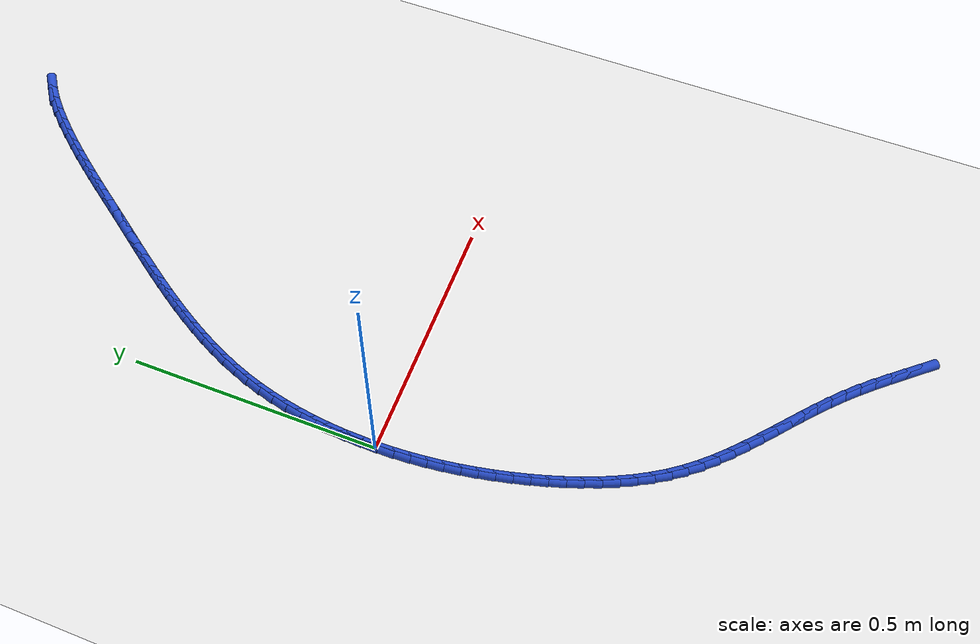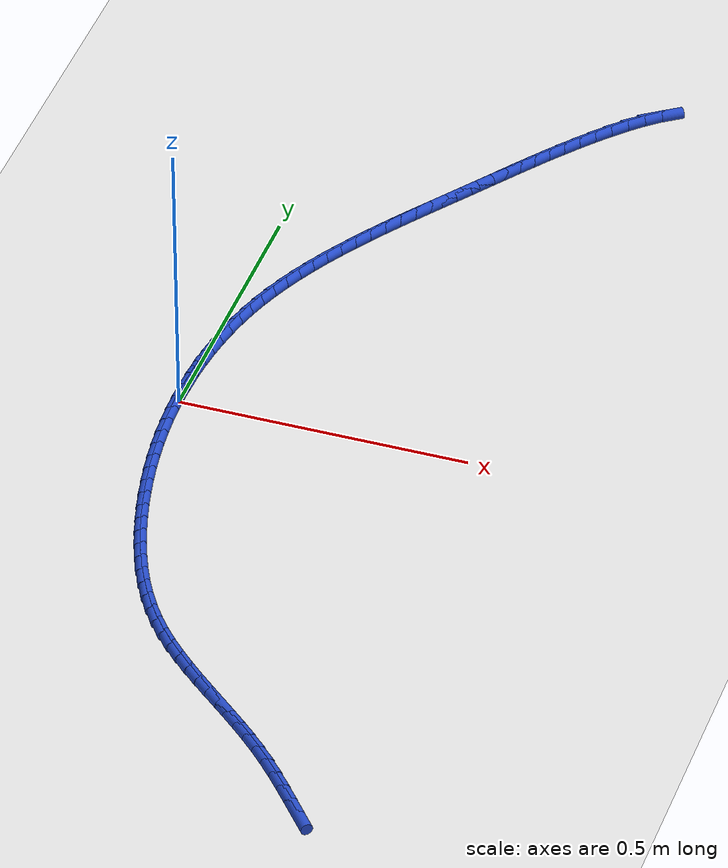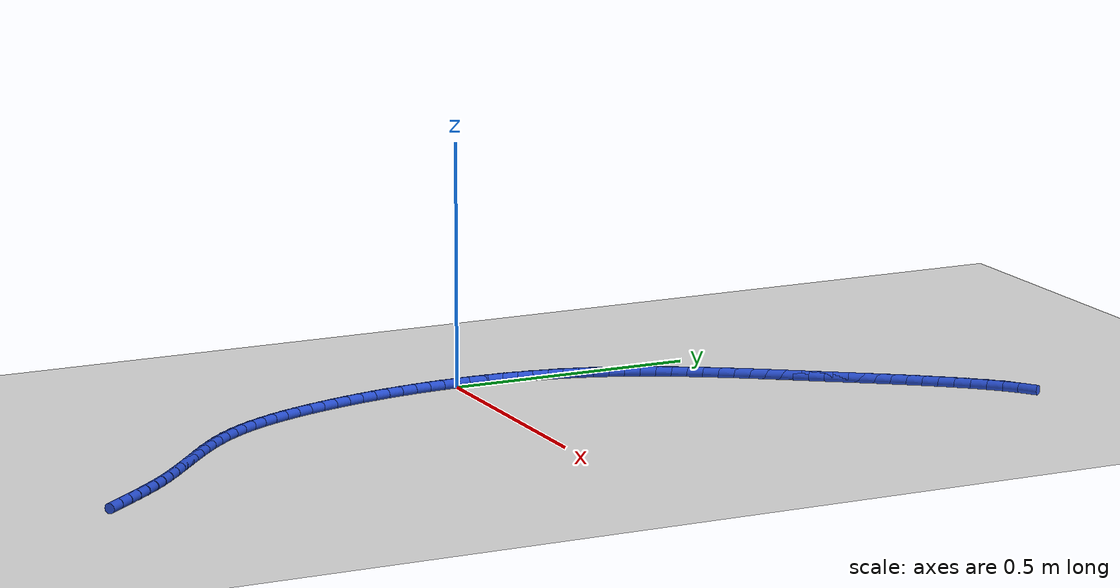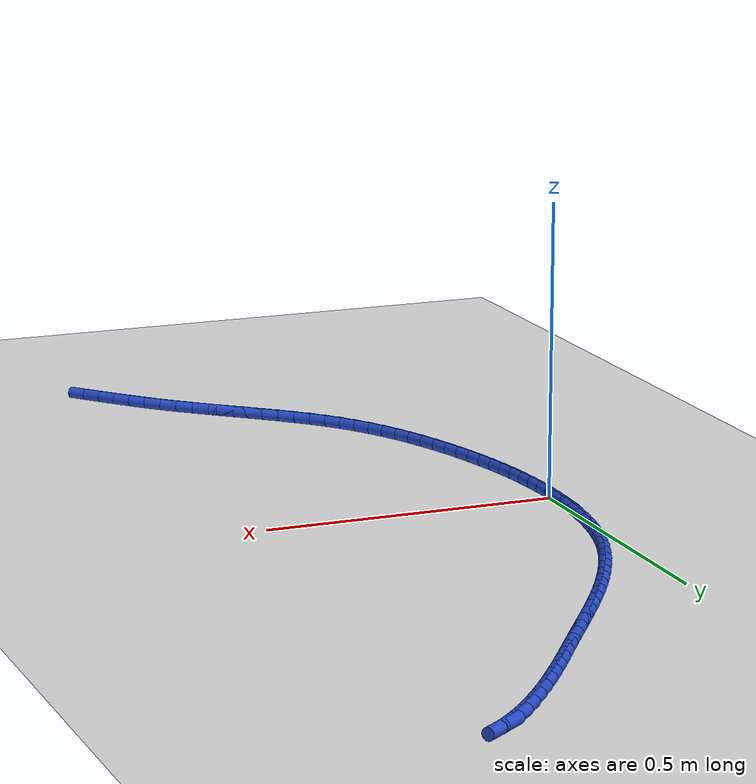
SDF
<sdf version="1.6">
 <world name="default">
  <model name="ground_plane">
   <static>1</static>
   <link name="link">
    <collision name="collision">
     <geometry><plane><normal>0 0 1</normal><size>100 100</size></plane></geometry>
     <surface><friction><ode><mu>100</mu><mu2>50</mu2></ode></friction></surface>
    </collision>
    <visual name="visual">
     <cast_shadows>0</cast_shadows>
     <geometry><plane><normal>0 0 1</normal><size>100 100</size></plane></geometry>
     <material>
      <script><uri>file://media/materials/scripts/gazebo.material</uri><name>Gazebo/WhiteGlow</name></script>
     </material>
    </visual>
   </link>
  </model>
  <model name="line">
   <link name="link_0">
    <pose>6.938893903907228e-18 -5.551115123125783e-17 0.01 0 1.57 1.5669654835388633</pose>
    <collision name="collision">
     <geometry><cylinder><radius>0.01</radius><length>0.08</length></cylinder></geometry>
    </collision>
    <visual name="visual">
     <material>
      <script><name>Gazebo/Blue</name><uri>file://media/materials/scripts/gazebo.material</uri></script>
     </material>
     <geometry><cylinder><radius>0.01</radius><length>0.08</length></cylinder></geometry>
    </visual>
   </link>
   <link name="link_1">
    <pose>0.00012194123054519223 0.031831277315265846 0.01 0 1.57 1.535377310988925</pose>
    <collision name="collision">
     <geometry><cylinder><radius>0.01</radius><length>0.08</length></cylinder></geometry>
    </collision>
    <visual name="visual">
     <material>
      <script><name>Gazebo/Blue</name><uri>file://media/materials/scripts/gazebo.material</uri></script>
     </material>
     <geometry><cylinder><radius>0.01</radius><length>0.08</length></cylinder></geometry>
    </visual>
   </link>
   <link name="link_2">
    <pose>0.0012511948632218024 0.06370063756570017 0.01 0 1.57 1.5025588163627706</pose>
    <collision name="collision">
     <geometry><cylinder><radius>0.01</radius><length>0.08</length></cylinder></geometry>
    </collision>
    <visual name="visual">
     <material>
      <script><name>Gazebo/Blue</name><uri>file://media/materials/scripts/gazebo.material</uri></script>
     </material>
     <geometry><cylinder><radius>0.01</radius><length>0.08</length></cylinder></geometry>
    </visual>
   </link>
   <link name="link_3">
    <pose>0.003427320727243444 0.09554158830387062 0.01 0 1.57 1.4683853448257147</pose>
    <collision name="collision">
     <geometry><cylinder><radius>0.01</radius><length>0.08</length></cylinder></geometry>
    </collision>
    <visual name="visual">
     <material>
      <script><name>Gazebo/Blue</name><uri>file://media/materials/scripts/gazebo.material</uri></script>
     </material>
     <geometry><cylinder><radius>0.01</radius><length>0.08</length></cylinder></geometry>
    </visual>
   </link>
   <link name="link_4">
    <pose>0.006689878651823732 0.12728763708234492 0.01 0 1.57 1.4327346327322514</pose>
    <collision name="collision">
     <geometry><cylinder><radius>0.01</radius><length>0.08</length></cylinder></geometry>
    </collision>
    <visual name="visual">
     <material>
      <script><name>Gazebo/Blue</name><uri>file://media/materials/scripts/gazebo.material</uri></script>
     </material>
     <geometry><cylinder><radius>0.01</radius><length>0.08</length></cylinder></geometry>
    </visual>
   </link>
   <link name="link_5">
    <pose>0.01107842846617628 0.15887229145369067 0.01 0 1.57 1.3954884972912422</pose>
    <collision name="collision">
     <geometry><cylinder><radius>0.01</radius><length>0.08</length></cylinder></geometry>
    </collision>
    <visual name="visual">
     <material>
      <script><name>Gazebo/Blue</name><uri>file://media/materials/scripts/gazebo.material</uri></script>
     </material>
     <geometry><cylinder><radius>0.01</radius><length>0.08</length></cylinder></geometry>
    </visual>
   </link>
   <link name="link_6">
    <pose>0.016632529999514686 0.19022905897047548 0.01 0 1.57 1.356535224108454</pose>
    <collision name="collision">
     <geometry><cylinder><radius>0.01</radius><length>0.08</length></cylinder></geometry>
    </collision>
    <visual name="visual">
     <material>
      <script><name>Gazebo/Blue</name><uri>file://media/materials/scripts/gazebo.material</uri></script>
     </material>
     <geometry><cylinder><radius>0.01</radius><length>0.08</length></cylinder></geometry>
    </visual>
   </link>
   <link name="link_7">
    <pose>0.023391743081052574 0.22129144718526716 0.01 0 1.57 1.315772730758062</pose>
    <collision name="collision">
     <geometry><cylinder><radius>0.01</radius><length>0.08</length></cylinder></geometry>
    </collision>
    <visual name="visual">
     <material>
      <script><name>Gazebo/Blue</name><uri>file://media/materials/scripts/gazebo.material</uri></script>
     </material>
     <geometry><cylinder><radius>0.01</radius><length>0.08</length></cylinder></geometry>
    </visual>
   </link>
   <link name="link_8">
    <pose>0.03139562754000355 0.2519929636506333 0.01 0 1.57 1.2731125659442077</pose>
    <collision name="collision">
     <geometry><cylinder><radius>0.01</radius><length>0.08</length></cylinder></geometry>
    </collision>
    <visual name="visual">
     <material>
      <script><name>Gazebo/Blue</name><uri>file://media/materials/scripts/gazebo.material</uri></script>
     </material>
     <geometry><cylinder><radius>0.01</radius><length>0.08</length></cylinder></geometry>
    </visual>
   </link>
   <link name="link_9">
    <pose>0.04068374307144816 0.2822671160071291 0.01 0 1.57 1.2294073464821222</pose>
    <collision name="collision">
     <geometry><cylinder><radius>0.01</radius><length>0.08</length></cylinder></geometry>
    </collision>
    <visual name="visual">
     <material>
      <script><name>Gazebo/Blue</name><uri>file://media/materials/scripts/gazebo.material</uri></script>
     </material>
     <geometry><cylinder><radius>0.01</radius><length>0.08</length></cylinder></geometry>
    </visual>
   </link>
   <link name="link_10">
    <pose>0.051270545831827274 0.31206387912666805 0.01 0 1.57 1.1881747160021985</pose>
    <collision name="collision">
     <geometry><cylinder><radius>0.01</radius><length>0.08</length></cylinder></geometry>
    </collision>
    <visual name="visual">
     <material>
      <script><name>Gazebo/Blue</name><uri>file://media/materials/scripts/gazebo.material</uri></script>
     </material>
     <geometry><cylinder><radius>0.01</radius><length>0.08</length></cylinder></geometry>
    </visual>
   </link>
   <link name="link_11">
    <pose>0.06307529547825129 0.3413956741681762 0.01 0 1.57 1.150331695141347</pose>
    <collision name="collision">
     <geometry><cylinder><radius>0.01</radius><length>0.08</length></cylinder></geometry>
    </collision>
    <visual name="visual">
     <material>
      <script><name>Gazebo/Blue</name><uri>file://media/materials/scripts/gazebo.material</uri></script>
     </material>
     <geometry><cylinder><radius>0.01</radius><length>0.08</length></cylinder></geometry>
    </visual>
   </link>
   <link name="link_12">
    <pose>0.07599468984895631 0.3702897222236327 0.01 0 1.57 1.115922368008723</pose>
    <collision name="collision">
     <geometry><cylinder><radius>0.01</radius><length>0.08</length></cylinder></geometry>
    </collision>
    <visual name="visual">
     <material>
      <script><name>Gazebo/Blue</name><uri>file://media/materials/scripts/gazebo.material</uri></script>
     </material>
     <geometry><cylinder><radius>0.01</radius><length>0.08</length></cylinder></geometry>
    </visual>
   </link>
   <link name="link_13">
    <pose>0.08992542678217855 0.39877324438501704 0.01 0 1.57 1.084948609894714</pose>
    <collision name="collision">
     <geometry><cylinder><radius>0.01</radius><length>0.08</length></cylinder></geometry>
    </collision>
    <visual name="visual">
     <material>
      <script><name>Gazebo/Blue</name><uri>file://media/materials/scripts/gazebo.material</uri></script>
     </material>
     <geometry><cylinder><radius>0.01</radius><length>0.08</length></cylinder></geometry>
    </visual>
   </link>
   <link name="link_14">
    <pose>0.104764204116154 0.4268734617443082 0.01 0 1.57 1.0573823267352123</pose>
    <collision name="collision">
     <geometry><cylinder><radius>0.01</radius><length>0.08</length></cylinder></geometry>
    </collision>
    <visual name="visual">
     <material>
      <script><name>Gazebo/Blue</name><uri>file://media/materials/scripts/gazebo.material</uri></script>
     </material>
     <geometry><cylinder><radius>0.01</radius><length>0.08</length></cylinder></geometry>
    </visual>
   </link>
   <link name="link_15">
    <pose>0.1204077196891189 0.4546175953934856 0.01 0 1.57 1.0331765153796604</pose>
    <collision name="collision">
     <geometry><cylinder><radius>0.01</radius><length>0.08</length></cylinder></geometry>
    </collision>
    <visual name="visual">
     <material>
      <script><name>Gazebo/Blue</name><uri>file://media/materials/scripts/gazebo.material</uri></script>
     </material>
     <geometry><cylinder><radius>0.01</radius><length>0.08</length></cylinder></geometry>
    </visual>
   </link>
   <link name="link_16">
    <pose>0.1367526713393093 0.48203286642452847 0.01 0 1.57 1.0122748002317032</pose>
    <collision name="collision">
     <geometry><cylinder><radius>0.01</radius><length>0.08</length></cylinder></geometry>
    </collision>
    <visual name="visual">
     <material>
      <script><name>Gazebo/Blue</name><uri>file://media/materials/scripts/gazebo.material</uri></script>
     </material>
     <geometry><cylinder><radius>0.01</radius><length>0.08</length></cylinder></geometry>
    </visual>
   </link>
   <link name="link_17">
    <pose>0.15369575690496134 0.509146495929416 0.01 0 1.57 0.9946193721752303</pose>
    <collision name="collision">
     <geometry><cylinder><radius>0.01</radius><length>0.08</length></cylinder></geometry>
    </collision>
    <visual name="visual">
     <material>
      <script><name>Gazebo/Blue</name><uri>file://media/materials/scripts/gazebo.material</uri></script>
     </material>
     <geometry><cylinder><radius>0.01</radius><length>0.08</length></cylinder></geometry>
    </visual>
   </link>
   <link name="link_18">
    <pose>0.1711336742243111 0.535985705000127 0.01 0 1.57 0.9801574277149601</pose>
    <collision name="collision">
     <geometry><cylinder><radius>0.01</radius><length>0.08</length></cylinder></geometry>
    </collision>
    <visual name="visual">
     <material>
      <script><name>Gazebo/Blue</name><uri>file://media/materials/scripts/gazebo.material</uri></script>
     </material>
     <geometry><cylinder><radius>0.01</radius><length>0.08</length></cylinder></geometry>
    </visual>
   </link>
   <link name="link_19">
    <pose>0.18896312113559477 0.5625777147286413 0.01 0 1.57 0.9688462970841004</pose>
    <collision name="collision">
     <geometry><cylinder><radius>0.01</radius><length>0.08</length></cylinder></geometry>
    </collision>
    <visual name="visual">
     <material>
      <script><name>Gazebo/Blue</name><uri>file://media/materials/scripts/gazebo.material</uri></script>
     </material>
     <geometry><cylinder><radius>0.01</radius><length>0.08</length></cylinder></geometry>
    </visual>
   </link>
   <link name="link_20">
    <pose>0.2070807954770484 0.5889497462069377 0.01 0 1.57 0.9606574813904221</pose>
    <collision name="collision">
     <geometry><cylinder><radius>0.01</radius><length>0.08</length></cylinder></geometry>
    </collision>
    <visual name="visual">
     <material>
      <script><name>Gazebo/Blue</name><uri>file://media/materials/scripts/gazebo.material</uri></script>
     </material>
     <geometry><cylinder><radius>0.01</radius><length>0.08</length></cylinder></geometry>
    </visual>
   </link>
   <link name="link_21">
    <pose>0.22538339508690813 0.6151290205269958 0.01 0 1.57 0.955579810272203</pose>
    <collision name="collision">
     <geometry><cylinder><radius>0.01</radius><length>0.08</length></cylinder></geometry>
    </collision>
    <visual name="visual">
     <material>
      <script><name>Gazebo/Blue</name><uri>file://media/materials/scripts/gazebo.material</uri></script>
     </material>
     <geometry><cylinder><radius>0.01</radius><length>0.08</length></cylinder></geometry>
    </visual>
   </link>
   <link name="link_22">
    <pose>0.24376761780341016 0.6411427587807946 0.01 0 1.57 0.9536218977018835</pose>
    <collision name="collision">
     <geometry><cylinder><radius>0.01</radius><length>0.08</length></cylinder></geometry>
    </collision>
    <visual name="visual">
     <material>
      <script><name>Gazebo/Blue</name><uri>file://media/materials/scripts/gazebo.material</uri></script>
     </material>
     <geometry><cylinder><radius>0.01</radius><length>0.08</length></cylinder></geometry>
    </visual>
   </link>
   <link name="link_23">
    <pose>0.26213016146479046 0.6670181820603132 0.01 0 1.57 0.9548140238146458</pose>
    <collision name="collision">
     <geometry><cylinder><radius>0.01</radius><length>0.08</length></cylinder></geometry>
    </collision>
    <visual name="visual">
     <material>
      <script><name>Gazebo/Blue</name><uri>file://media/materials/scripts/gazebo.material</uri></script>
     </material>
     <geometry><cylinder><radius>0.01</radius><length>0.08</length></cylinder></geometry>
    </visual>
   </link>
   <link name="link_24">
    <pose>0.28036772390928544 0.6927825114575313 0.01 0 1.57 0.9582929610263923</pose>
    <collision name="collision">
     <geometry><cylinder><radius>0.01</radius><length>0.08</length></cylinder></geometry>
    </collision>
    <visual name="visual">
     <material>
      <script><name>Gazebo/Blue</name><uri>file://media/materials/scripts/gazebo.material</uri></script>
     </material>
     <geometry><cylinder><radius>0.01</radius><length>0.08</length></cylinder></geometry>
    </visual>
   </link>
   <link name="link_25">
    <pose>0.29841013017259904 0.7184601097069936 0.01 0 1.57 0.9593436651989775</pose>
    <collision name="collision">
     <geometry><cylinder><radius>0.01</radius><length>0.08</length></cylinder></geometry>
    </collision>
    <visual name="visual">
     <material>
      <script><name>Gazebo/Blue</name><uri>file://media/materials/scripts/gazebo.material</uri></script>
     </material>
     <geometry><cylinder><radius>0.01</radius><length>0.08</length></cylinder></geometry>
    </visual>
   </link>
   <link name="link_26">
    <pose>0.3163581970875961 0.744060585633713 0.01 0 1.57 0.9564043758296012</pose>
    <collision name="collision">
     <geometry><cylinder><radius>0.01</radius><length>0.08</length></cylinder></geometry>
    </collision>
    <visual name="visual">
     <material>
      <script><name>Gazebo/Blue</name><uri>file://media/materials/scripts/gazebo.material</uri></script>
     </material>
     <geometry><cylinder><radius>0.01</radius><length>0.08</length></cylinder></geometry>
    </visual>
   </link>
   <link name="link_27">
    <pose>0.33436775094205906 0.7695888016097443 0.01 0 1.57 0.9494918515290053</pose>
    <collision name="collision">
     <geometry><cylinder><radius>0.01</radius><length>0.08</length></cylinder></geometry>
    </collision>
    <visual name="visual">
     <material>
      <script><name>Gazebo/Blue</name><uri>file://media/materials/scripts/gazebo.material</uri></script>
     </material>
     <geometry><cylinder><radius>0.01</radius><length>0.08</length></cylinder></geometry>
    </visual>
   </link>
   <link name="link_28">
    <pose>0.35259464421295983 0.7950496177474264 0.01 0 1.57 0.938696021795991</pose>
    <collision name="collision">
     <geometry><cylinder><radius>0.01</radius><length>0.08</length></cylinder></geometry>
    </collision>
    <visual name="visual">
     <material>
      <script><name>Gazebo/Blue</name><uri>file://media/materials/scripts/gazebo.material</uri></script>
     </material>
     <geometry><cylinder><radius>0.01</radius><length>0.08</length></cylinder></geometry>
    </visual>
   </link>
   <link name="link_29">
    <pose>0.3711947293772703 0.8204478941590978 0.01 0 1.57 0.9241788284463602</pose>
    <collision name="collision">
     <geometry><cylinder><radius>0.01</radius><length>0.08</length></cylinder></geometry>
    </collision>
    <visual name="visual">
     <material>
      <script><name>Gazebo/Blue</name><uri>file://media/materials/scripts/gazebo.material</uri></script>
     </material>
     <geometry><cylinder><radius>0.01</radius><length>0.08</length></cylinder></geometry>
    </visual>
   </link>
   <link name="link_30">
    <pose>0.3903238589119627 0.8457884909570976 0.01 0 1.57 0.906171850045479</pose>
    <collision name="collision">
     <geometry><cylinder><radius>0.01</radius><length>0.08</length></cylinder></geometry>
    </collision>
    <visual name="visual">
     <material>
      <script><name>Gazebo/Blue</name><uri>file://media/materials/scripts/gazebo.material</uri></script>
     </material>
     <geometry><cylinder><radius>0.01</radius><length>0.08</length></cylinder></geometry>
    </visual>
   </link>
   <link name="link_31">
    <pose>0.4101378852940087 0.8710762682537642 0.01 0 1.57 0.884971522147805</pose>
    <collision name="collision">
     <geometry><cylinder><radius>0.01</radius><length>0.08</length></cylinder></geometry>
    </collision>
    <visual name="visual">
     <material>
      <script><name>Gazebo/Blue</name><uri>file://media/materials/scripts/gazebo.material</uri></script>
     </material>
     <geometry><cylinder><radius>0.01</radius><length>0.08</length></cylinder></geometry>
    </visual>
   </link>
   <link name="link_32">
    <pose>0.43079266100038055 0.8963160861614365 0.01 0 1.57 0.860325191939609</pose>
    <collision name="collision">
     <geometry><cylinder><radius>0.01</radius><length>0.08</length></cylinder></geometry>
    </collision>
    <visual name="visual">
     <material>
      <script><name>Gazebo/Blue</name><uri>file://media/materials/scripts/gazebo.material</uri></script>
     </material>
     <geometry><cylinder><radius>0.01</radius><length>0.08</length></cylinder></geometry>
    </visual>
   </link>
   <link name="link_33">
    <pose>0.4524358345052663 0.9214723815625939 0.01 0 1.57 0.8255889135785234</pose>
    <collision name="collision">
     <geometry><cylinder><radius>0.01</radius><length>0.08</length></cylinder></geometry>
    </collision>
    <visual name="visual">
     <material>
      <script><name>Gazebo/Blue</name><uri>file://media/materials/scripts/gazebo.material</uri></script>
     </material>
     <geometry><cylinder><radius>0.01</radius><length>0.08</length></cylinder></geometry>
    </visual>
   </link>
   <link name="link_34">
    <pose>0.4751241936718708 0.9460618977613874 0.01 0 1.57 0.7753351197922916</pose>
    <collision name="collision">
     <geometry><cylinder><radius>0.01</radius><length>0.08</length></cylinder></geometry>
    </collision>
    <visual name="visual">
     <material>
      <script><name>Gazebo/Blue</name><uri>file://media/materials/scripts/gazebo.material</uri></script>
     </material>
     <geometry><cylinder><radius>0.01</radius><length>0.08</length></cylinder></geometry>
    </visual>
   </link>
   <link name="link_35">
    <pose>0.49885797983272506 0.9693227587748456 0.01 0 1.57 0.7069330107999624</pose>
    <collision name="collision">
     <geometry><cylinder><radius>0.01</radius><length>0.08</length></cylinder></geometry>
    </collision>
    <visual name="visual">
     <material>
      <script><name>Gazebo/Blue</name><uri>file://media/materials/scripts/gazebo.material</uri></script>
     </material>
     <geometry><cylinder><radius>0.01</radius><length>0.08</length></cylinder></geometry>
    </visual>
   </link>
   <link name="link_36">
    <pose>0.5236365807927928 0.9904888830703481 0.01 0 1.57 0.6166618216930905</pose>
    <collision name="collision">
     <geometry><cylinder><radius>0.01</radius><length>0.08</length></cylinder></geometry>
    </collision>
    <visual name="visual">
     <material>
      <script><name>Gazebo/Blue</name><uri>file://media/materials/scripts/gazebo.material</uri></script>
     </material>
     <geometry><cylinder><radius>0.01</radius><length>0.08</length></cylinder></geometry>
    </visual>
   </link>
   <link name="link_186">
    <pose>0.521116051768348 -0.9028632633307889 0.01 0 1.57 -0.8710672446952179</pose>
    <collision name="collision">
     <geometry><cylinder><radius>0.01</radius><length>0.08</length></cylinder></geometry>
    </collision>
    <visual name="visual">
     <material>
      <script><name>Gazebo/Blue</name><uri>file://media/materials/scripts/gazebo.material</uri></script>
     </material>
     <geometry><cylinder><radius>0.01</radius><length>0.08</length></cylinder></geometry>
    </visual>
   </link>
   <link name="link_187">
    <pose>0.5000499671809981 -0.8778389703495013 0.01 0 1.57 -0.865487263702177</pose>
    <collision name="collision">
     <geometry><cylinder><radius>0.01</radius><length>0.08</length></cylinder></geometry>
    </collision>
    <visual name="visual">
     <material>
      <script><name>Gazebo/Blue</name><uri>file://media/materials/scripts/gazebo.material</uri></script>
     </material>
     <geometry><cylinder><radius>0.01</radius><length>0.08</length></cylinder></geometry>
    </visual>
   </link>
   <link name="link_188">
    <pose>0.47882356293635103 -0.8529079339964162 0.01 0 1.57 -0.851598384430619</pose>
    <collision name="collision">
     <geometry><cylinder><radius>0.01</radius><length>0.08</length></cylinder></geometry>
    </collision>
    <visual name="visual">
     <material>
      <script><name>Gazebo/Blue</name><uri>file://media/materials/scripts/gazebo.material</uri></script>
     </material>
     <geometry><cylinder><radius>0.01</radius><length>0.08</length></cylinder></geometry>
    </visual>
   </link>
   <link name="link_189">
    <pose>0.4572757427447078 -0.8283001298713544 0.01 0 1.57 -0.8292945862807465</pose>
    <collision name="collision">
     <geometry><cylinder><radius>0.01</radius><length>0.08</length></cylinder></geometry>
    </collision>
    <visual name="visual">
     <material>
      <script><name>Gazebo/Blue</name><uri>file://media/materials/scripts/gazebo.material</uri></script>
     </material>
     <geometry><cylinder><radius>0.01</radius><length>0.08</length></cylinder></geometry>
    </visual>
   </link>
   <link name="link_190">
    <pose>0.43524541031636893 -0.8042455335741353 0.01 0 1.57 -0.798423039936568</pose>
    <collision name="collision">
     <geometry><cylinder><radius>0.01</radius><length>0.08</length></cylinder></geometry>
    </collision>
    <visual name="visual">
     <material>
      <script><name>Gazebo/Blue</name><uri>file://media/materials/scripts/gazebo.material</uri></script>
     </material>
     <geometry><cylinder><radius>0.01</radius><length>0.08</length></cylinder></geometry>
    </visual>
   </link>
   <link name="link_191">
    <pose>0.41257192397753717 -0.7809735797058659 0.01 0 1.57 -0.76365602331518</pose>
    <collision name="collision">
     <geometry><cylinder><radius>0.01</radius><length>0.08</length></cylinder></geometry>
    </collision>
    <visual name="visual">
     <material>
      <script><name>Gazebo/Blue</name><uri>file://media/materials/scripts/gazebo.material</uri></script>
     </material>
     <geometry><cylinder><radius>0.01</radius><length>0.08</length></cylinder></geometry>
    </visual>
   </link>
   <link name="link_192">
    <pose>0.3891961962727304 -0.7585928520537314 0.01 0 1.57 -0.7359616707981324</pose>
    <collision name="collision">
     <geometry><cylinder><radius>0.01</radius><length>0.08</length></cylinder></geometry>
    </collision>
    <visual name="visual">
     <material>
      <script><name>Gazebo/Blue</name><uri>file://media/materials/scripts/gazebo.material</uri></script>
     </material>
     <geometry><cylinder><radius>0.01</radius><length>0.08</length></cylinder></geometry>
    </visual>
   </link>
   <link name="link_193">
    <pose>0.3652883166635067 -0.7369392109531955 0.01 0 1.57 -0.716942803937962</pose>
    <collision name="collision">
     <geometry><cylinder><radius>0.01</radius><length>0.08</length></cylinder></geometry>
    </collision>
    <visual name="visual">
     <material>
      <script><name>Gazebo/Blue</name><uri>file://media/materials/scripts/gazebo.material</uri></script>
     </material>
     <geometry><cylinder><radius>0.01</radius><length>0.08</length></cylinder></geometry>
    </visual>
   </link>
   <link name="link_194">
    <pose>0.3410497901204812 -0.7158111318836131 0.01 0 1.57 -0.7066705394387706</pose>
    <collision name="collision">
     <geometry><cylinder><radius>0.01</radius><length>0.08</length></cylinder></geometry>
    </collision>
    <visual name="visual">
     <material>
      <script><name>Gazebo/Blue</name><uri>file://media/materials/scripts/gazebo.material</uri></script>
     </material>
     <geometry><cylinder><radius>0.01</radius><length>0.08</length></cylinder></geometry>
    </visual>
   </link>
   <link name="link_195">
    <pose>0.3166821216142675 -0.6950070903243376 0.01 0 1.57 -0.7052228804400089</pose>
    <collision name="collision">
     <geometry><cylinder><radius>0.01</radius><length>0.08</length></cylinder></geometry>
    </collision>
    <visual name="visual">
     <material>
      <script><name>Gazebo/Blue</name><uri>file://media/materials/scripts/gazebo.material</uri></script>
     </material>
     <geometry><cylinder><radius>0.01</radius><length>0.08</length></cylinder></geometry>
    </visual>
   </link>
   <link name="link_196">
    <pose>0.29238681611548156 -0.674325561754724 0.01 0 1.57 -0.7127092739079308</pose>
    <collision name="collision">
     <geometry><cylinder><radius>0.01</radius><length>0.08</length></cylinder></geometry>
    </collision>
    <visual name="visual">
     <material>
      <script><name>Gazebo/Blue</name><uri>file://media/materials/scripts/gazebo.material</uri></script>
     </material>
     <geometry><cylinder><radius>0.01</radius><length>0.08</length></cylinder></geometry>
    </visual>
   </link>
   <link name="link_197">
    <pose>0.26836537859473747 -0.6535650216541263 0.01 0 1.57 -0.7292753042828585</pose>
    <collision name="collision">
     <geometry><cylinder><radius>0.01</radius><length>0.08</length></cylinder></geometry>
    </collision>
    <visual name="visual">
     <material>
      <script><name>Gazebo/Blue</name><uri>file://media/materials/scripts/gazebo.material</uri></script>
     </material>
     <geometry><cylinder><radius>0.01</radius><length>0.08</length></cylinder></geometry>
    </visual>
   </link>
   <link name="link_198">
    <pose>0.2448193140226497 -0.6325239455018985 0.01 0 1.57 -0.7550857685522255</pose>
    <collision name="collision">
     <geometry><cylinder><radius>0.01</radius><length>0.08</length></cylinder></geometry>
    </collision>
    <visual name="visual">
     <material>
      <script><name>Gazebo/Blue</name><uri>file://media/materials/scripts/gazebo.material</uri></script>
     </material>
     <geometry><cylinder><radius>0.01</radius><length>0.08</length></cylinder></geometry>
    </visual>
   </link>
   <link name="link_199">
    <pose>0.2219501273698324 -0.6110008087773945 0.01 0 1.57 -0.7902834218813535</pose>
    <collision name="collision">
     <geometry><cylinder><radius>0.01</radius><length>0.08</length></cylinder></geometry>
    </collision>
    <visual name="visual">
     <material>
      <script><name>Gazebo/Blue</name><uri>file://media/materials/scripts/gazebo.material</uri></script>
     </material>
     <geometry><cylinder><radius>0.01</radius><length>0.08</length></cylinder></geometry>
    </visual>
   </link>
   <link name="link_200">
    <pose>0.19995932360690133 -0.5887940869599695 0.01 0 1.57 -0.8349208063299983</pose>
    <collision name="collision">
     <geometry><cylinder><radius>0.01</radius><length>0.08</length></cylinder></geometry>
    </collision>
    <visual name="visual">
     <material>
      <script><name>Gazebo/Blue</name><uri>file://media/materials/scripts/gazebo.material</uri></script>
     </material>
     <geometry><cylinder><radius>0.01</radius><length>0.08</length></cylinder></geometry>
    </visual>
   </link>
   <link name="link_201">
    <pose>0.17904840770447036 -0.5657022555289767 0.01 0 1.57 -0.8888655477036802</pose>
    <collision name="collision">
     <geometry><cylinder><radius>0.01</radius><length>0.08</length></cylinder></geometry>
    </collision>
    <visual name="visual">
     <material>
      <script><name>Gazebo/Blue</name><uri>file://media/materials/scripts/gazebo.material</uri></script>
     </material>
     <geometry><cylinder><radius>0.01</radius><length>0.08</length></cylinder></geometry>
    </visual>
   </link>
   <link name="link_202">
    <pose>0.15941888463315432 -0.541523789963771 0.01 0 1.57 -0.9496794786894157</pose>
    <collision name="collision">
     <geometry><cylinder><radius>0.01</radius><length>0.08</length></cylinder></geometry>
    </collision>
    <visual name="visual">
     <material>
      <script><name>Gazebo/Blue</name><uri>file://media/materials/scripts/gazebo.material</uri></script>
     </material>
     <geometry><cylinder><radius>0.01</radius><length>0.08</length></cylinder></geometry>
    </visual>
   </link>
   <link name="link_203">
    <pose>0.1412311607980489 -0.5161076149875392 0.01 0 1.57 -1.0079960123355003</pose>
    <collision name="collision">
     <geometry><cylinder><radius>0.01</radius><length>0.08</length></cylinder></geometry>
    </collision>
    <visual name="visual">
     <material>
      <script><name>Gazebo/Blue</name><uri>file://media/materials/scripts/gazebo.material</uri></script>
     </material>
     <geometry><cylinder><radius>0.01</radius><length>0.08</length></cylinder></geometry>
    </visual>
   </link>
   <link name="link_204">
    <pose>0.12446271219249085 -0.489527205762911 0.01 0 1.57 -1.0613648474145174</pose>
    <collision name="collision">
     <geometry><cylinder><radius>0.01</radius><length>0.08</length></cylinder></geometry>
    </collision>
    <visual name="visual">
     <material>
      <script><name>Gazebo/Blue</name><uri>file://media/materials/scripts/gazebo.material</uri></script>
     </material>
     <geometry><cylinder><radius>0.01</radius><length>0.08</length></cylinder></geometry>
    </visual>
   </link>
   <link name="link_205">
    <pose>0.10904013730684671 -0.46191849052163003 0.01 0 1.57 -1.1099719647948088</pose>
    <collision name="collision">
     <geometry><cylinder><radius>0.01</radius><length>0.08</length></cylinder></geometry>
    </collision>
    <visual name="visual">
     <material>
      <script><name>Gazebo/Blue</name><uri>file://media/materials/scripts/gazebo.material</uri></script>
     </material>
     <geometry><cylinder><radius>0.01</radius><length>0.08</length></cylinder></geometry>
    </visual>
   </link>
   <link name="link_206">
    <pose>0.09489003256659141 -0.4334174000301344 0.01 0 1.57 -1.1540660092964008</pose>
    <collision name="collision">
     <geometry><cylinder><radius>0.01</radius><length>0.08</length></cylinder></geometry>
    </collision>
    <visual name="visual">
     <material>
      <script><name>Gazebo/Blue</name><uri>file://media/materials/scripts/gazebo.material</uri></script>
     </material>
     <geometry><cylinder><radius>0.01</radius><length>0.08</length></cylinder></geometry>
    </visual>
   </link>
   <link name="link_207">
    <pose>0.0819389943971996 -0.4041598650548613 0.01 0 1.57 -1.1939261906267418</pose>
    <collision name="collision">
     <geometry><cylinder><radius>0.01</radius><length>0.08</length></cylinder></geometry>
    </collision>
    <visual name="visual">
     <material>
      <script><name>Gazebo/Blue</name><uri>file://media/materials/scripts/gazebo.material</uri></script>
     </material>
     <geometry><cylinder><radius>0.01</radius><length>0.08</length></cylinder></geometry>
    </visual>
   </link>
   <link name="link_208">
    <pose>0.07011361922414677 -0.37428181636224966 0.01 0 1.57 -1.2298384724990108</pose>
    <collision name="collision">
     <geometry><cylinder><radius>0.01</radius><length>0.08</length></cylinder></geometry>
    </collision>
    <visual name="visual">
     <material>
      <script><name>Gazebo/Blue</name><uri>file://media/materials/scripts/gazebo.material</uri></script>
     </material>
     <geometry><cylinder><radius>0.01</radius><length>0.08</length></cylinder></geometry>
    </visual>
   </link>
   <link name="link_209">
    <pose>0.05934050347290752 -0.34391918471873706 0.01 0 1.57 -1.2620787706330339</pose>
    <collision name="collision">
     <geometry><cylinder><radius>0.01</radius><length>0.08</length></cylinder></geometry>
    </collision>
    <visual name="visual">
     <material>
      <script><name>Gazebo/Blue</name><uri>file://media/materials/scripts/gazebo.material</uri></script>
     </material>
     <geometry><cylinder><radius>0.01</radius><length>0.08</length></cylinder></geometry>
    </visual>
   </link>
   <link name="link_210">
    <pose>0.049546243568956747 -0.31320790089076106 0.01 0 1.57 -1.2909015790175684</pose>
    <collision name="collision">
     <geometry><cylinder><radius>0.01</radius><length>0.08</length></cylinder></geometry>
    </collision>
    <visual name="visual">
     <material>
      <script><name>Gazebo/Blue</name><uri>file://media/materials/scripts/gazebo.material</uri></script>
     </material>
     <geometry><cylinder><radius>0.01</radius><length>0.08</length></cylinder></geometry>
    </visual>
   </link>
   <link name="link_211">
    <pose>0.04065743593776936 -0.2822838956447595 0.01 0 1.57 -1.3171279413683572</pose>
    <collision name="collision">
     <geometry><cylinder><radius>0.01</radius><length>0.08</length></cylinder></geometry>
    </collision>
    <visual name="visual">
     <material>
      <script><name>Gazebo/Blue</name><uri>file://media/materials/scripts/gazebo.material</uri></script>
     </material>
     <geometry><cylinder><radius>0.01</radius><length>0.08</length></cylinder></geometry>
    </visual>
   </link>
   <link name="link_212">
    <pose>0.03261467838150871 -0.25126110151493264 0.01 0 1.57 -1.3433869575895685</pose>
    <collision name="collision">
     <geometry><cylinder><radius>0.01</radius><length>0.08</length></cylinder></geometry>
    </collision>
    <visual name="visual">
     <material>
      <script><name>Gazebo/Blue</name><uri>file://media/materials/scripts/gazebo.material</uri></script>
     </material>
     <geometry><cylinder><radius>0.01</radius><length>0.08</length></cylinder></geometry>
    </visual>
   </link>
   <link name="link_213">
    <pose>0.02541764559033216 -0.22016063251264753 0.01 0 1.57 -1.3703265916817264</pose>
    <collision name="collision">
     <geometry><cylinder><radius>0.01</radius><length>0.08</length></cylinder></geometry>
    </collision>
    <visual name="visual">
     <material>
      <script><name>Gazebo/Blue</name><uri>file://media/materials/scripts/gazebo.material</uri></script>
     </material>
     <geometry><cylinder><radius>0.01</radius><length>0.08</length></cylinder></geometry>
    </visual>
   </link>
   <link name="link_214">
    <pose>0.019081590967383683 -0.18897912618857018 0.01 0 1.57 -1.3979141029518676</pose>
    <collision name="collision">
     <geometry><cylinder><radius>0.01</radius><length>0.08</length></cylinder></geometry>
    </collision>
    <visual name="visual">
     <material>
      <script><name>Gazebo/Blue</name><uri>file://media/materials/scripts/gazebo.material</uri></script>
     </material>
     <geometry><cylinder><radius>0.01</radius><length>0.08</length></cylinder></geometry>
    </visual>
   </link>
   <link name="link_215">
    <pose>0.013621767999047508 -0.1577132199625851 0.01 0 1.57 -1.4261110055461923</pose>
    <collision name="collision">
     <geometry><cylinder><radius>0.01</radius><length>0.08</length></cylinder></geometry>
    </collision>
    <visual name="visual">
     <material>
      <script><name>Gazebo/Blue</name><uri>file://media/materials/scripts/gazebo.material</uri></script>
     </material>
     <geometry><cylinder><radius>0.01</radius><length>0.08</length></cylinder></geometry>
    </visual>
   </link>
   <link name="link_216">
    <pose>0.009053430171707797 -0.12635955125457604 0.01 0 1.57 -1.4548730758375628</pose>
    <collision name="collision">
     <geometry><cylinder><radius>0.01</radius><length>0.08</length></cylinder></geometry>
    </collision>
    <visual name="visual">
     <material>
      <script><name>Gazebo/Blue</name><uri>file://media/materials/scripts/gazebo.material</uri></script>
     </material>
     <geometry><cylinder><radius>0.01</radius><length>0.08</length></cylinder></geometry>
    </visual>
   </link>
   <link name="link_217">
    <pose>0.005391830971749015 -0.0949147574844291 0.01 0 1.57 -1.4841504788063886</pose>
    <collision name="collision">
     <geometry><cylinder><radius>0.01</radius><length>0.08</length></cylinder></geometry>
    </collision>
    <visual name="visual">
     <material>
      <script><name>Gazebo/Blue</name><uri>file://media/materials/scripts/gazebo.material</uri></script>
     </material>
     <geometry><cylinder><radius>0.01</radius><length>0.08</length></cylinder></geometry>
    </visual>
   </link>
   <link name="link_218">
    <pose>0.002652223885555289 -0.06337547607202786 0.01 0 1.57 -1.5138880266185415</pose>
    <collision name="collision">
     <geometry><cylinder><radius>0.01</radius><length>0.08</length></cylinder></geometry>
    </collision>
    <visual name="visual">
     <material>
      <script><name>Gazebo/Blue</name><uri>file://media/materials/scripts/gazebo.material</uri></script>
     </material>
     <geometry><cylinder><radius>0.01</radius><length>0.08</length></cylinder></geometry>
    </visual>
   </link>
   <link name="link_219">
    <pose>0.0008498623995108708 -0.03173834443725688 0.01 0 1.57 -1.544025574244875</pose>
    <collision name="collision">
     <geometry><cylinder><radius>0.01</radius><length>0.08</length></cylinder></geometry>
    </collision>
    <visual name="visual">
     <material>
      <script><name>Gazebo/Blue</name><uri>file://media/materials/scripts/gazebo.material</uri></script>
     </material>
     <geometry><cylinder><radius>0.01</radius><length>0.08</length></cylinder></geometry>
    </visual>
   </link>
   <link name="link_220">
    <pose>-3.469446951953614e-18 1.5265566588595902e-16 0.01 0 1.57 1.5670941023929201</pose>
    <collision name="collision">
     <geometry><cylinder><radius>0.01</radius><length>0.08</length></cylinder></geometry>
    </collision>
    <visual name="visual">
     <material>
      <script><name>Gazebo/Blue</name><uri>file://media/materials/scripts/gazebo.material</uri></script>
     </material>
     <geometry><cylinder><radius>0.01</radius><length>0.08</length></cylinder></geometry>
    </visual>
   </link>
   <link name="link_221">
    <pose>0.00011789017340694142 0.031842919819856416 0.01 0 1.57 1.5363540315337283</pose>
    <collision name="collision">
     <geometry><cylinder><radius>0.01</radius><length>0.08</length></cylinder></geometry>
    </collision>
    <visual name="visual">
     <material>
      <script><name>Gazebo/Blue</name><uri>file://media/materials/scripts/gazebo.material</uri></script>
     </material>
     <geometry><cylinder><radius>0.01</radius><length>0.08</length></cylinder></geometry>
    </visual>
   </link>
   <link name="link_222">
    <pose>0.0012187864061159667 0.06379377760243049 0.01 0 1.57 1.5516935522491972</pose>
    <collision name="collision">
     <geometry><cylinder><radius>0.01</radius><length>0.08</length></cylinder></geometry>
    </collision>
    <visual name="visual">
     <material>
      <script><name>Gazebo/Blue</name><uri>file://media/materials/scripts/gazebo.material</uri></script>
     </material>
     <geometry><cylinder><radius>0.01</radius><length>0.08</length></cylinder></geometry>
    </visual>
   </link>
  </model>
 </world>
</sdf>
